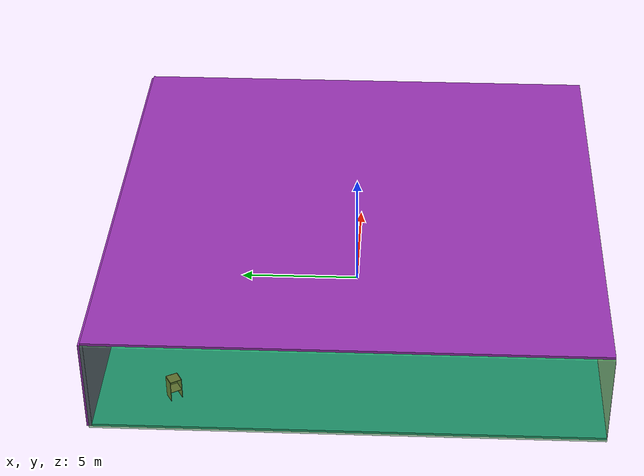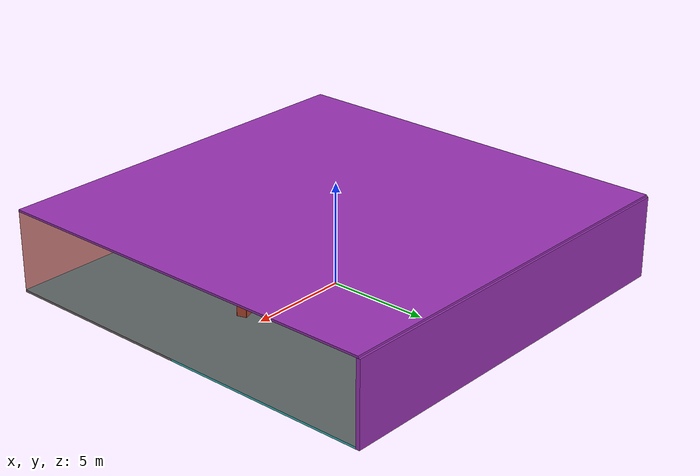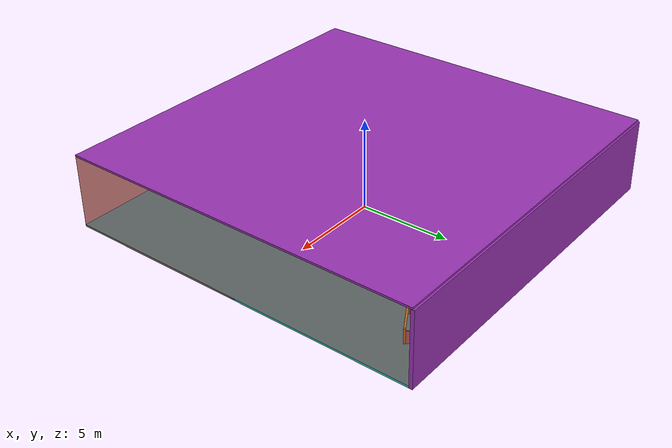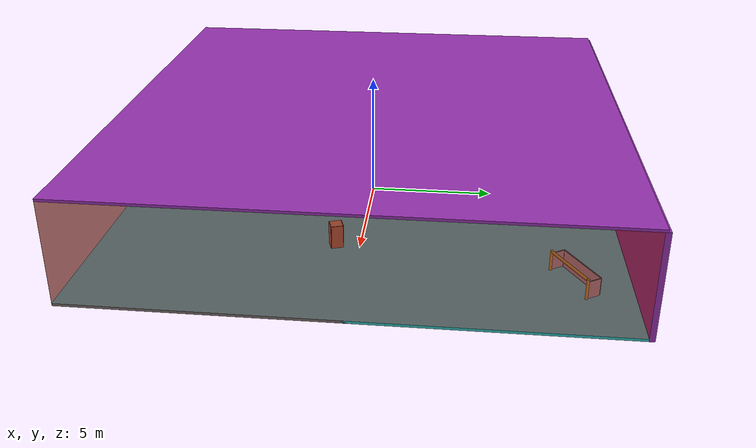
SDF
<sdf version="1.4">
 <world name="default">
  <physics type="ode">
   <max_step_size>0.001</max_step_size>
   <real_time_factor>1</real_time_factor>
   <real_time_update_rate>1000</real_time_update_rate>
   <gravity>0 0 -9.8</gravity>
  </physics>
  <scene><ambient>0.4 0.4 0.4 1</ambient><background>0.7 0.7 0.7 1</background><shadows>1</shadows></scene>
  <model name="Surrounding">
   <static>1</static>
   <link name="Ceiling">
    <collision name="Ceiling_Collision"><geometry><box><size>20 20 0.1</size></box></geometry></collision>
    <visual name="Ceiling_Visual">
     <geometry><box><size>20 20 0.1</size></box></geometry>
     <material>
      <script><uri>file://media/materials/scripts/gazebo.material</uri><name>Gazebo/Purple</name></script>
     </material>
    </visual>
    <pose>0 0 4.05 0 0 0</pose>
   </link>
   <link name="Wall_South">
    <collision name="Wall_South_Collision">
     <geometry><box><size>20 0 4</size></box></geometry>
     <pose>0 0 2 0 -0 0</pose>
    </collision>
    <visual name="Wall_South_Visual">
     <pose>0 0 2 0 -0 0</pose>
     <geometry><box><size>20 0 4</size></box></geometry>
     <material>
      <script><uri>file://media/materials/scripts/gazebo.material</uri><name>Gazebo/White</name></script>
     </material>
    </visual>
    <velocity_decay><linear>0</linear><angular>0</angular></velocity_decay>
    <pose>0 -10 0 0 -0 0</pose>
   </link>
   <link name="Wall_East">
    <collision name="Wall_21_Collision">
     <geometry><box><size>20 0 4</size></box></geometry>
     <pose>0 0 2 0 -0 0</pose>
    </collision>
    <visual name="Wall_21_Visual">
     <pose>0 0 2 0 -0 0</pose>
     <geometry><box><size>20 0 4</size></box></geometry>
     <material>
      <script><uri>file://media/materials/scripts/gazebo.material</uri><name>Gazebo/RedTransparent</name></script>
     </material>
    </visual>
    <velocity_decay><linear>0</linear><angular>0</angular></velocity_decay>
    <pose>10 0 0 0 -0 1.5708</pose>
   </link>
   <link name="Wall_North">
    <collision name="Wall_22_Collision">
     <geometry><box><size>20 0.2 4</size></box></geometry>
     <pose>0 0 2 0 -0 0</pose>
    </collision>
    <visual name="Wall_22_Visual">
     <pose>0 0 2 0 -0 0</pose>
     <geometry><box><size>20 0.2 4</size></box></geometry>
     <material>
      <script><uri>file://media/materials/scripts/gazebo.material</uri><name>Gazebo/PurpleGlow</name></script>
     </material>
    </visual>
    <velocity_decay><linear>0</linear><angular>0</angular></velocity_decay>
    <pose>0 10 0 0 -0 0</pose>
   </link>
   <link name="Wall_West">
    <collision name="Wall_23_Collision">
     <geometry><box><size>20 0.2 4</size></box></geometry>
     <pose>0 0 2 0 -0 0</pose>
    </collision>
    <visual name="Wall_23_Visual">
     <pose>0 0 2 0 -0 0</pose>
     <geometry><box><size>20 0.2 4</size></box></geometry>
     <material>
      <script><uri>file://media/materials/scripts/gazebo.material</uri><name>Gazebo/GreenTransparent</name></script>
     </material>
    </visual>
    <velocity_decay><linear>0</linear><angular>0</angular></velocity_decay>
    <pose>-10 0 0 0 0 -1.5708</pose>
   </link>
   <link name="Ground_link">
    <collision name="collision">
     <pose>0 0 .05 0 -0 0</pose>
     <geometry><box><size>20 20 0.1</size></box></geometry>
    </collision>
    <visual name="visual">
     <pose>0 0 .05 0 -0 0</pose>
     <geometry><box><size>20 20 0.1</size></box></geometry>
     <material>
      <script>
       <uri>file://media/materials/scripts/gazebo.material</uri>
       <name>Gazebo/TurquoiseGlowOutline</name>
      </script>
     </material>
    </visual>
   </link>
   <static>1</static>
  </model>
  <spherical_coordinates>
   <surface_model>EARTH_WGS84</surface_model>
   <latitude_deg>0</latitude_deg>
   <longitude_deg>0</longitude_deg>
   <elevation>0</elevation>
   <heading_deg>0</heading_deg>
  </spherical_coordinates>
  <light name="lightball_0" type="diffuse">
   <diffuse>0.8 0.8 0.8 1</diffuse>
   <specular>0.2 0.2 0.2 1</specular>
   <attenuation>
    <range>100</range>
    <constant>0.7</constant>
    <linear>0.01</linear>
    <quadratic>0.001</quadratic>
   </attenuation>
   <direction>-0.5 0.1 -0.9</direction>
   <pose>-8.94306584971 8.32389064994 1.44461927082 0 0 0</pose>
  </light>
  <light name="lightball_1" type="diffuse">
   <diffuse>0.8 0.8 0.8 1</diffuse>
   <specular>0.2 0.2 0.2 1</specular>
   <attenuation>
    <range>100</range>
    <constant>0.7</constant>
    <linear>0.01</linear>
    <quadratic>0.001</quadratic>
   </attenuation>
   <direction>-0.5 0.1 -0.9</direction>
   <pose>2.98661754869 -3.03996427894 1.41666967184 0 0 0</pose>
  </light>
  <light name="lightball_2" type="diffuse">
   <diffuse>0.8 0.8 0.8 1</diffuse>
   <specular>0.2 0.2 0.2 1</specular>
   <attenuation>
    <range>100</range>
    <constant>0.7</constant>
    <linear>0.01</linear>
    <quadratic>0.001</quadratic>
   </attenuation>
   <direction>-0.5 0.1 -0.9</direction>
   <pose>-3.12374708499 2.37035679663 3.0450357701 0 0 0</pose>
  </light>
  <light name="lightball_3" type="diffuse">
   <diffuse>0.8 0.8 0.8 1</diffuse>
   <specular>0.2 0.2 0.2 1</specular>
   <attenuation>
    <range>100</range>
    <constant>0.7</constant>
    <linear>0.01</linear>
    <quadratic>0.001</quadratic>
   </attenuation>
   <direction>-0.5 0.1 -0.9</direction>
   <pose>3.78289015233 -9.96788225813 3.77910263832 0 0 0</pose>
  </light>
  <light name="lightball_4" type="diffuse">
   <diffuse>0.8 0.8 0.8 1</diffuse>
   <specular>0.2 0.2 0.2 1</specular>
   <attenuation>
    <range>100</range>
    <constant>0.7</constant>
    <linear>0.01</linear>
    <quadratic>0.001</quadratic>
   </attenuation>
   <direction>-0.5 0.1 -0.9</direction>
   <pose>1.10663134958 -7.33204402796 3.80738718175 0 0 0</pose>
  </light>
  <light name="lightball_5" type="diffuse">
   <diffuse>0.8 0.8 0.8 1</diffuse>
   <specular>0.2 0.2 0.2 1</specular>
   <attenuation>
    <range>100</range>
    <constant>0.7</constant>
    <linear>0.01</linear>
    <quadratic>0.001</quadratic>
   </attenuation>
   <direction>-0.5 0.1 -0.9</direction>
   <pose>-1.2998987408 6.87453038572 0.581419539621 0 0 0</pose>
  </light>
  <light name="lightball_6" type="diffuse">
   <diffuse>0.8 0.8 0.8 1</diffuse>
   <specular>0.2 0.2 0.2 1</specular>
   <attenuation>
    <range>100</range>
    <constant>0.7</constant>
    <linear>0.01</linear>
    <quadratic>0.001</quadratic>
   </attenuation>
   <direction>-0.5 0.1 -0.9</direction>
   <pose>-1.4728067955 8.55190139061 2.30219492503 0 0 0</pose>
  </light>
  <light name="lightball_7" type="diffuse">
   <diffuse>0.8 0.8 0.8 1</diffuse>
   <specular>0.2 0.2 0.2 1</specular>
   <attenuation>
    <range>100</range>
    <constant>0.7</constant>
    <linear>0.01</linear>
    <quadratic>0.001</quadratic>
   </attenuation>
   <direction>-0.5 0.1 -0.9</direction>
   <pose>-2.36886054565 -7.56101715097 0.901547907385 0 0 0</pose>
  </light>
  <light name="lightball_8" type="diffuse">
   <diffuse>0.8 0.8 0.8 1</diffuse>
   <specular>0.2 0.2 0.2 1</specular>
   <attenuation>
    <range>100</range>
    <constant>0.7</constant>
    <linear>0.01</linear>
    <quadratic>0.001</quadratic>
   </attenuation>
   <direction>-0.5 0.1 -0.9</direction>
   <pose>-8.38321748399 -4.7314424007 2.79732739504 0 0 0</pose>
  </light>
  <light name="lightball_9" type="diffuse">
   <diffuse>0.8 0.8 0.8 1</diffuse>
   <specular>0.2 0.2 0.2 1</specular>
   <attenuation>
    <range>100</range>
    <constant>0.7</constant>
    <linear>0.01</linear>
    <quadratic>0.001</quadratic>
   </attenuation>
   <direction>-0.5 0.1 -0.9</direction>
   <pose>-6.94849195257 -6.42791595849 3.01744182306 0 0 0</pose>
  </light>
  <light name="lightball_10" type="diffuse">
   <diffuse>0.8 0.8 0.8 1</diffuse>
   <specular>0.2 0.2 0.2 1</specular>
   <attenuation>
    <range>100</range>
    <constant>0.7</constant>
    <linear>0.01</linear>
    <quadratic>0.001</quadratic>
   </attenuation>
   <direction>-0.5 0.1 -0.9</direction>
   <pose>0.990941572512 8.26337632742 1.35912304573 0 0 0</pose>
  </light>
  <light name="lightball_11" type="diffuse">
   <diffuse>0.8 0.8 0.8 1</diffuse>
   <specular>0.2 0.2 0.2 1</specular>
   <attenuation>
    <range>100</range>
    <constant>0.7</constant>
    <linear>0.01</linear>
    <quadratic>0.001</quadratic>
   </attenuation>
   <direction>-0.5 0.1 -0.9</direction>
   <pose>-9.44573623559 0.712638222051 1.34166496786 0 0 0</pose>
  </light>
  <light name="lightball_12" type="diffuse">
   <diffuse>0.8 0.8 0.8 1</diffuse>
   <specular>0.2 0.2 0.2 1</specular>
   <attenuation>
    <range>100</range>
    <constant>0.7</constant>
    <linear>0.01</linear>
    <quadratic>0.001</quadratic>
   </attenuation>
   <direction>-0.5 0.1 -0.9</direction>
   <pose>-2.29294880049 3.62069282357 0.719960457359 0 0 0</pose>
  </light>
  <light name="lightball_13" type="diffuse">
   <diffuse>0.8 0.8 0.8 1</diffuse>
   <specular>0.2 0.2 0.2 1</specular>
   <attenuation>
    <range>100</range>
    <constant>0.7</constant>
    <linear>0.01</linear>
    <quadratic>0.001</quadratic>
   </attenuation>
   <direction>-0.5 0.1 -0.9</direction>
   <pose>8.55232123556 2.47172182556 0.928286390275 0 0 0</pose>
  </light>
  <include><uri>model://cabinet</uri><pose>-8.21550723035 6.88936910142 0 0 0 0.523415841856</pose></include>
  <include>
   <uri>model://construction_cone</uri>
   <pose>-4.96067002939 -3.90211246762 0 0 0 0.880127938918</pose>
  </include>
  <include><uri>model://cabinet</uri><pose>-4.82570676942 4.21021945635 0 0 0 2.10208633888</pose></include>
  <include>
   <uri>model://robocup_3Dsim_goal</uri>
   <pose>-2.08531067179 -7.32300176062 0 0 0 0.486591953347</pose>
  </include>
  <include><uri>model://cabinet</uri><pose>5.10950768241 -0.889557263182 0 0 0 0.326022481416</pose></include>
  <include>
   <uri>model://robocup_3Dsim_goal</uri>
   <pose>6.98656423435 7.63209179652 0 0 0 2.10690977518</pose>
  </include>
 </world>
</sdf>

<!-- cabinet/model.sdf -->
<sdf version="1.5">
  <model name="cabinet">
    <static>true</static>
    <link name="cabinet_bottom_plate">
      <inertial>
        <pose>0 0 -1 0 0 0</pose>
        <inertia>
          <ixx>2.050000</ixx>
          <ixy>0</ixy>
          <ixz>0</ixz>
          <iyy>2.050000</iyy>
          <iyz>0</iyz>
          <izz>2.050000</izz>
        </inertia>
        <mass>25.000000</mass>
      </inertial>
      <collision name="cabinet_bottom_plate_geom">
        <pose>0 0 0.010000 0 0 0</pose>
        <geometry>
          <box>
            <size>0.450000 0.450000 0.020000</size>
          </box>
        </geometry>
      </collision>
      <visual name="cabinet_bottom_plate_geom_visual">
        <pose>0 0 0.010000 0 0 0</pose>
        <geometry>
          <box>
            <size>0.450000 0.450000 0.020000</size>
          </box>
        </geometry>
        <material>
          <script>
            <uri>model://media/materials/scripts/gazebo.material</uri>
            <name>Gazebo/Wood</name>
          </script>
        </material>
      </visual>
      <collision name="cabinet_bottom_plate_geom_cabinet_back_plate">
        <pose>0.235000 0 0.510000 0 0 0</pose>
        <geometry>
          <box>
            <size>0.020000 0.450000 1.020000</size>
          </box>
        </geometry>
      </collision>
      <visual name="cabinet_bottom_plate_geom_cabinet_back_plate_visual">
        <pose>0.235000 0 0.510000 0 0 0</pose>
        <geometry>
          <box>
            <size>0.020000 0.450000 1.020000</size>
          </box>
        </geometry>
        <material>
          <script>
            <uri>model://media/materials/scripts/gazebo.material</uri>
            <name>Gazebo/Wood</name>
          </script>
        </material>
      </visual>
      <collision name="cabinet_bottom_plate_geom_cabinet_left_plate">
        <pose>0 0.235000 0.510000 0 0 0</pose>
        <geometry>
          <box>
            <size>0.450000 0.020000 1.020000</size>
          </box>
        </geometry>
      </collision>
      <visual name="cabinet_bottom_plate_geom_cabinet_left_plate_visual">
        <pose>0 0.235000 0.510000 0 0 0</pose>
        <geometry>
          <box>
            <size>0.450000 0.020000 1.020000</size>
          </box>
        </geometry>
        <material>
          <script>
            <uri>model://media/materials/scripts/gazebo.material</uri>
            <name>Gazebo/Wood</name>
          </script>
        </material>
      </visual>
      <collision name="cabinet_bottom_plate_geom_cabinet_middle_plate">
        <pose>0 0 0.510000 0 0 0</pose>
        <geometry>
          <box>
            <size>0.450000 0.450000 0.020000</size>
          </box>
        </geometry>
      </collision>
      <visual name="cabinet_bottom_plate_geom_cabinet_middle_plate_visual">
        <pose>0 0 0.510000 0 0 0</pose>
        <geometry>
          <box>
            <size>0.450000 0.450000 0.020000</size>
          </box>
        </geometry>
        <material>
          <script>
            <uri>model://media/materials/scripts/gazebo.material</uri>
            <name>Gazebo/Wood</name>
          </script>
        </material>
      </visual>
      <collision name="cabinet_bottom_plate_geom_cabinet_right_plate">
        <pose>0 -0.235000 0.510000 0 0 0</pose>
        <geometry>
          <box>
            <size>0.450000 0.020000 1.020000</size>
          </box>
        </geometry>
      </collision>
      <visual name="cabinet_bottom_plate_geom_cabinet_right_plate_visual">
        <pose>0 -0.235000 0.510000 0 0 0</pose>
        <geometry>
          <box>
            <size>0.450000 0.020000 1.020000</size>
          </box>
        </geometry>
        <material>
          <script>
            <uri>model://media/materials/scripts/gazebo.material</uri>
            <name>Gazebo/Wood</name>
          </script>
        </material>
      </visual>
      <collision name="cabinet_bottom_plate_geom_cabinet_top_plate">
        <pose>0 0 1.010000 0 0 0</pose>
        <geometry>
          <box>
            <size>0.450000 0.450000 0.020000</size>
          </box>
        </geometry>
      </collision>
      <visual name="cabinet_bottom_plate_geom_cabinet_top_plate_visual">
        <pose>0 0 1.010000 0 0 0</pose>
        <geometry>
          <box>
            <size>0.450000 0.450000 0.020000</size>
          </box>
        </geometry>
        <material>
          <script>
            <uri>model://media/materials/scripts/gazebo.material</uri>
            <name>Gazebo/Wood</name>
          </script>
        </material>
      </visual>
    </link>
  </model>
</sdf>

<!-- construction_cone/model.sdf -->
<sdf version="1.5">
  <model name="Construction Cone">
    <link name="link">
      <collision name="collision">
        <geometry>
          <mesh>
            <scale>10 10 10</scale>
            <uri>file://isr-testbed/construction_cone/meshes/construction_cone.dae</uri>
          </mesh>
        </geometry>
      </collision>
      <visual name="visual">
        <geometry>
          <mesh>
            <scale>10 10 10</scale>
            <uri>file://isr-testbed/construction_cone/meshes/construction_cone.dae</uri>
          </mesh>
        </geometry>
      </visual>
    </link>
  </model>
</sdf>

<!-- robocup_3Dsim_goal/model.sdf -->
<sdf version="1.5">
  <model name="robocup_3d_goal">
    <static>true</static>
    <link name="left_post">
      <pose>0 1.05 0.45 0 0 0</pose>
      <collision name="collision">
        <geometry>
          <cylinder>
            <radius>0.05</radius>
            <length>0.9</length>
          </cylinder>
        </geometry>
      </collision>
      <visual name="visual">
        <geometry>
          <cylinder>
            <radius>0.05</radius>
            <length>0.9</length>
          </cylinder>
        </geometry>
        <material>
          <script>
            <uri>file://media/materials/scripts/gazebo.material</uri>
            <name>Gazebo/ZincYellow</name>
          </script>
        </material>
      </visual>
    </link>
    <link name="left_support_horiz_lower">
      <pose>0.30 1.05 0.01 0 0 0</pose>
      <collision name="collision">
        <geometry>
          <box>
            <size>0.50 0.02 0.02</size>
          </box>
        </geometry>
      </collision>
      <visual name="visual">
        <geometry>
          <box>
            <size>0.50 0.02 0.02</size>
          </box>
        </geometry>
        <material>
          <script>
            <uri>file://media/materials/scripts/gazebo.material</uri>
            <name>Gazebo/White</name>
          </script>
        </material>
      </visual>
    </link>
    <link name="left_support_horiz_upper">
      <pose>0.30 1.05 0.79 0 0 0</pose>
      <collision name="collision">
        <geometry>
          <box>
            <size>0.50 0.02 0.02</size>
          </box>
        </geometry>
      </collision>
      <visual name="visual">
        <geometry>
          <box>
            <size>0.50 0.02 0.02</size>
          </box>
        </geometry>
        <material>
          <script>
            <uri>file://media/materials/scripts/gazebo.material</uri>
            <name>Gazebo/White</name>
          </script>
        </material>
      </visual>
    </link>
    <link name="left_support_vertical">
      <pose>0.56 1.05 0.4 0 1.5708 0</pose>
      <collision name="collision">
        <geometry>
          <box>
            <size>0.80 0.02 0.02</size>
          </box>
        </geometry>
      </collision>
      <visual name="visual">
        <geometry>
          <box>
            <size>0.80 0.02 0.02</size>
          </box>
        </geometry>
        <material>
          <script>
            <uri>file://media/materials/scripts/gazebo.material</uri>
            <name>Gazebo/White</name>
          </script>
        </material>
      </visual>
    </link>
    <link name="right_support_horiz_lower">
      <pose>0.30 -1.05 0.01 0 0 0</pose>
      <collision name="collision">
        <geometry>
          <box>
            <size>0.50 0.02 0.02</size>
          </box>
        </geometry>
      </collision>
      <visual name="visual">
        <geometry>
          <box>
            <size>0.50 0.02 0.02</size>
          </box>
        </geometry>
        <material>
          <script>
            <uri>file://media/materials/scripts/gazebo.material</uri>
            <name>Gazebo/White</name>
          </script>
        </material>
      </visual>
    </link>
    <link name="right_support_horiz_upper">
      <pose>0.30 -1.05 0.79 0 0 0</pose>
      <collision name="collision">
        <geometry>
          <box>
            <size>0.50 0.02 0.02</size>
          </box>
        </geometry>
      </collision>
      <visual name="visual">
        <geometry>
          <box>
            <size>0.50 0.02 0.02</size>
          </box>
        </geometry>
        <material>
          <script>
            <uri>file://media/materials/scripts/gazebo.material</uri>
            <name>Gazebo/White</name>
          </script>
        </material>
      </visual>
    </link>
    <link name="right_support_vertical">
      <pose>0.56 -1.05 0.4 0 1.5708 0</pose>
      <collision name="collision">
        <geometry>
          <box>
            <size>0.80 0.02 0.02</size>
          </box>
        </geometry>
      </collision>
      <visual name="visual">
        <geometry>
          <box>
            <size>0.80 0.02 0.02</size>
          </box>
        </geometry>
        <material>
          <script>
            <uri>file://media/materials/scripts/gazebo.material</uri>
            <name>Gazebo/White</name>
          </script>
        </material>
      </visual>
    </link>
    <link name="center_support_horiz_lower">
      <pose>0.56 0 0.01 0 1.5708 0</pose>
      <collision name="collision">
        <geometry>
          <box>
            <size>0.02 2.08 0.02</size>
          </box>
        </geometry>
      </collision>
      <visual name="visual">
        <geometry>
          <box>
            <size>0.02 2.08 0.02</size>
          </box>
        </geometry>
        <material>
          <script>
            <uri>file://media/materials/scripts/gazebo.material</uri>
            <name>Gazebo/White</name>
          </script>
        </material>
      </visual>
    </link>
    <link name="center_support_horiz_upper">
      <pose>0.56 0 0.79 0 1.5708 0</pose>
      <collision name="collision">
        <geometry>
          <box>
            <size>0.02 2.08 0.02</size>
          </box>
        </geometry>
      </collision>
      <visual name="visual">
        <geometry>
          <box>
            <size>0.02 2.08 0.02</size>
          </box>
        </geometry>
        <material>
          <script>
            <uri>file://media/materials/scripts/gazebo.material</uri>
            <name>Gazebo/White</name>
          </script>
        </material>
      </visual>
    </link>
    <link name="right_post">
      <pose>0 -1.05 0.45 0 0 0</pose>
      <collision name="collision">
        <geometry>
          <cylinder>
            <radius>0.05</radius>
            <length>0.9</length>
          </cylinder>
        </geometry>
      </collision>
      <visual name="visual">
        <geometry>
          <cylinder>
            <radius>0.05</radius>
            <length>0.9</length>
          </cylinder>
        </geometry>
        <material>
          <script>
            <uri>file://media/materials/scripts/gazebo.material</uri>
            <name>Gazebo/ZincYellow</name>
          </script>
        </material>
      </visual>
    </link>
    <link name="crossbar">
      <pose>0 0 0.85 1.57 1.57 0</pose>
      <collision name="collision">
        <geometry>
          <cylinder>
            <radius>0.05</radius>
            <length>2.0</length>
          </cylinder>
        </geometry>
      </collision>
      <visual name="visual">
        <geometry>
          <cylinder>
            <radius>0.05</radius>
            <length>2.0</length>
          </cylinder>
        </geometry>
        <material>
          <script>
            <uri>file://media/materials/scripts/gazebo.material</uri>
            <name>Gazebo/ZincYellow</name>
          </script>
        </material>
      </visual>
    </link>
    <link name="center_net">
      <pose>0.56 0 0.40 0 0 0</pose>
      <collision name="collision">
        <geometry>
          <box>
            <size>0.01 2.1 0.80</size>
          </box>
        </geometry>
      </collision>
      <visual name="visual">
        <geometry>
          <box>
            <size>0.01 2.1 0.80</size>
          </box>
        </geometry>
        <material>
          <script>
            <uri>model://../model_source/models/robocup09_spl_field/materials/scripts/</uri>
            <uri>model://../model_source/models/robocup09_spl_field/materials/textures/</uri>
            <name>RoboCup/Net</name>
          </script>
        </material>
      </visual>
    </link>
    <link name="left_net">
      <pose>0.30 1.05 0.40 0 0 0</pose>
      <collision name="collision">
        <geometry>
          <box>
            <size>0.50 0.01 0.76</size>
          </box>
        </geometry>
      </collision>
      <visual name="visual">
        <geometry>
          <box>
            <size>0.50 0.01 0.76</size>
          </box>
        </geometry>
        <material>
          <script>
            <uri>model://../model_source/models/robocup09_spl_field/materials/scripts/</uri>
            <uri>model://../model_source/models/robocup09_spl_field/materials/textures/</uri>
            <name>RoboCup/Net</name>
          </script>
        </material>
      </visual>
    </link>
    <link name="right_net">
      <pose>0.30 -1.05 0.40 0 0 0</pose>
      <collision name="collision">
        <geometry>
          <box>
            <size>0.50 0.01 0.76</size>
          </box>
        </geometry>
      </collision>
      <visual name="visual">
        <geometry>
          <box>
            <size>0.50 0.01 0.76</size>
          </box>
        </geometry>
        <material>
          <script>
            <uri>model://../model_source/models/robocup09_spl_field/materials/scripts/</uri>
            <uri>model://../model_source/models/robocup09_spl_field/materials/textures/</uri>
            <name>RoboCup/Net</name>
          </script>
        </material>
      </visual>
    </link>
  </model>
</sdf>
